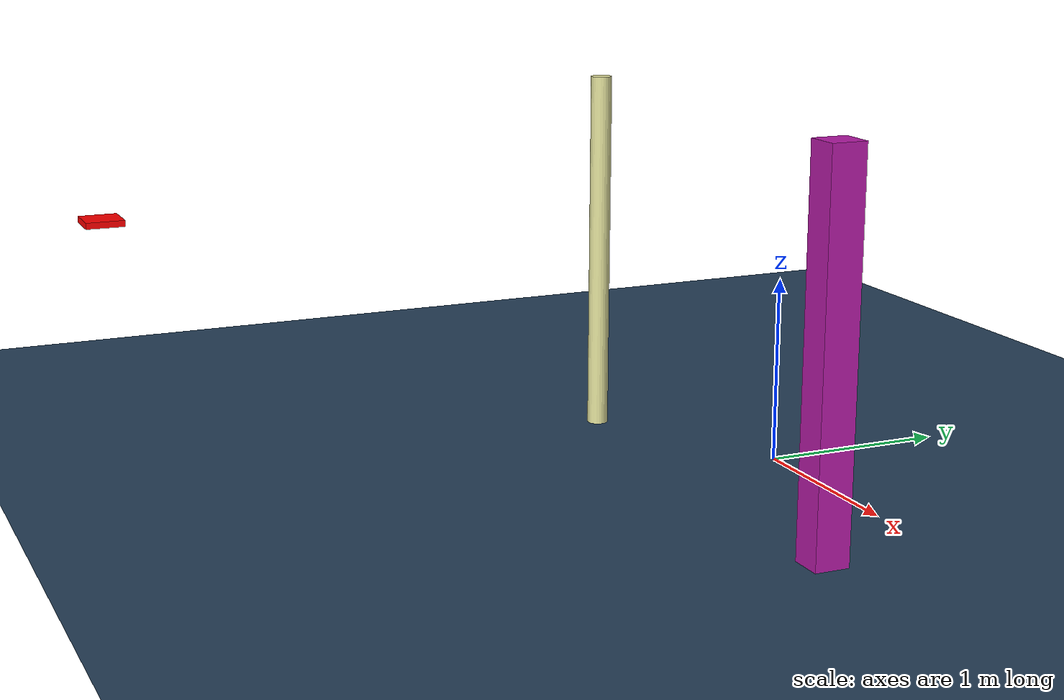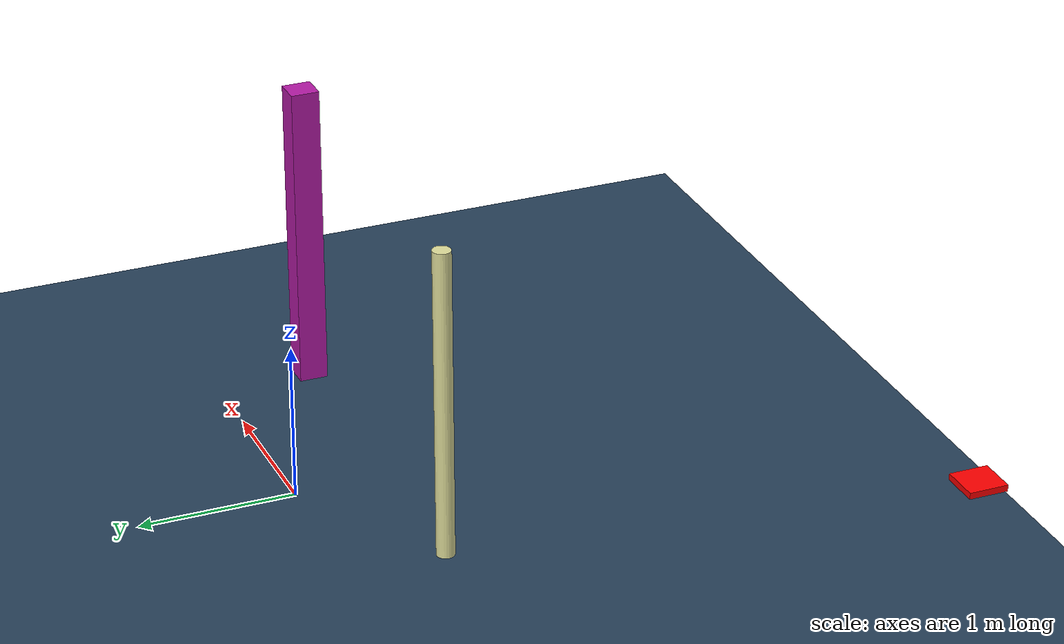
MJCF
<mujoco model="uav_env">
  <compiler angle="degree" coordinate="local" inertiafromgeom="true"/>
  <option integrator="RK4" timestep="0.01"/>
  <asset>
    <texture type="skybox" builtin="gradient" rgb1="0.3 0.5 0.7" rgb2="0 0 0" width="512" height="3072"/>
    <texture name="grid" type="2d" builtin="checker" rgb1="0.1 0.2 0.3" rgb2="0.2 0.3 0.4" width="512" height="512"/>
    <material name="grid" texture="grid" texrepeat="1 1" reflectance="0.2"/>
  </asset>
  <worldbody>
    <geom name="ground" type="plane" size="4.0 4.0 0.1" material="grid"/>
    <light name="light1" pos="0 0 4" dir="0 0 -1" diffuse="1 1 1"/>
    <body name="chassis" pos="-3.0 -3.0 1.0">
      <joint type="free" name="root"/>
      <geom type="box" size="0.12 0.12 0.02" rgba="1.0 0.0 0.0 1.0" mass="0.8"/>
      <site name="motor1" pos="0.08 0.08 0" size="0.01"/>
      <site name="motor2" pos="-0.08 0.08 0" size="0.01"/>
      <site name="motor3" pos="0.08 -0.08 0" size="0.01"/>
      <site name="motor4" pos="-0.08 -0.08 0" size="0.01"/>
    </body>
    <geom name="static_obs_0" type="box" size="0.0871547012957416 0.09155059553766168 1.0" pos="1.4562984970129462 -0.6077603271555717 1.0" rgba="0.7138574923625288 0.10525491127179808 0.656710109338157 1.0"/>
    <geom name="static_obs_1" type="cylinder" size="0.05788806593851948 1.0" pos="-1.0044010407017523 -0.5830250772035409 1.0" rgba="0.8806617484416271 0.8759789615499706 0.6103470168327172 1.0"/>
  </worldbody>
  <actuator>
    <motor name="m1" gear="0 0 1 0 0 0" site="motor1"/>
    <motor name="m2" gear="0 0 1 0 0 0" site="motor2"/>
    <motor name="m3" gear="0 0 1 0 0 0" site="motor3"/>
    <motor name="m4" gear="0 0 1 0 0 0" site="motor4"/>
  </actuator>
</mujoco>
